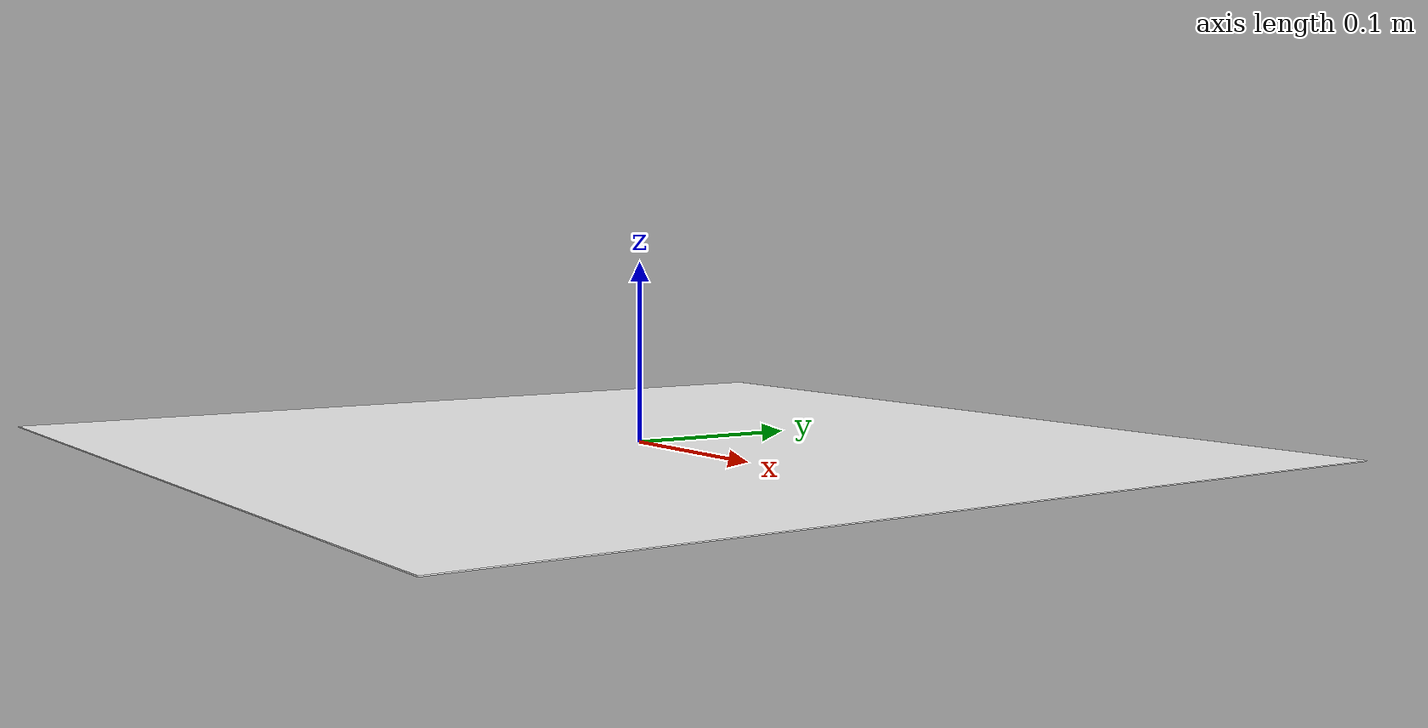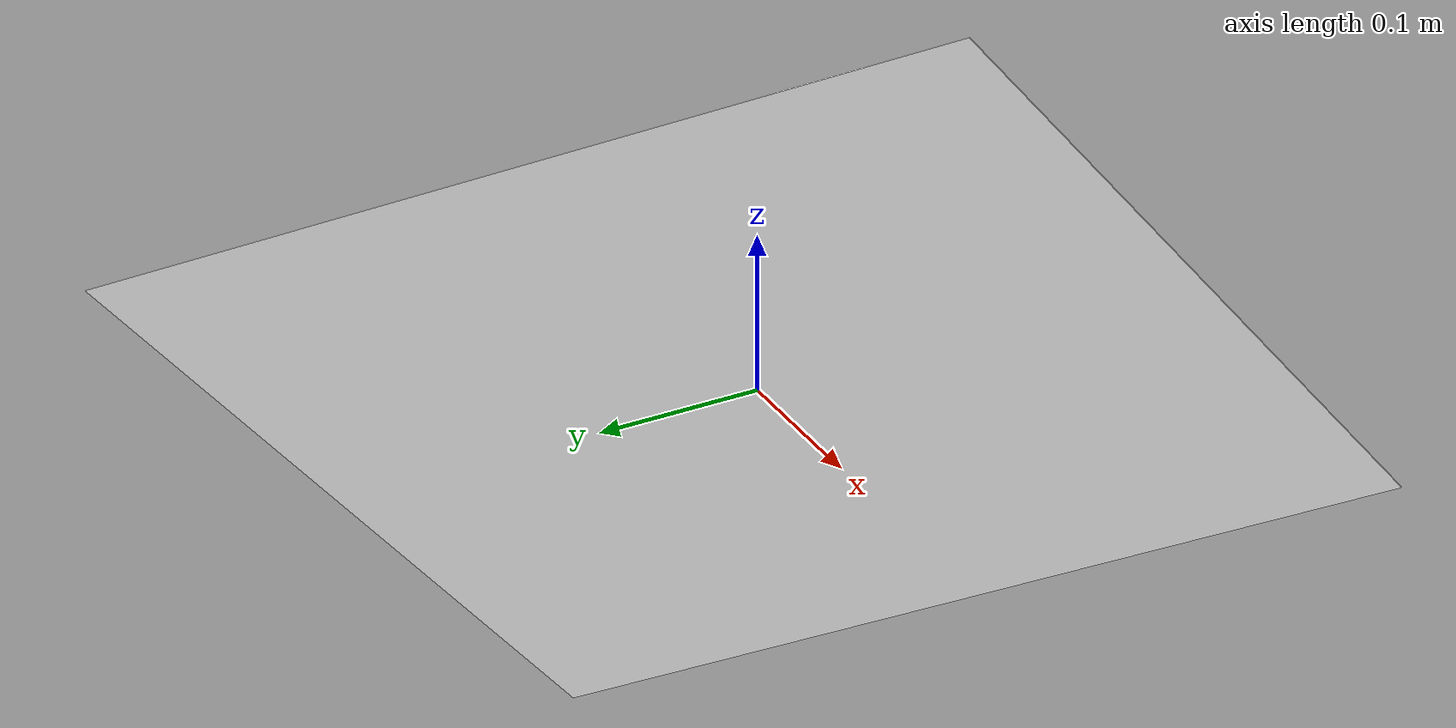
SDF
<?xml version="1.0" ?>
<sdf version="1.10">
  <model name="fractal_5L_6">
    <static>true</static>
    <pose>0 0 0 0 0 0</pose>
    <link name="link">
      <visual name="visual">
        <cast_shadows>false</cast_shadows>
        <geometry>
          <plane>
            <normal>0 0 1</normal>
            <size>0.53846 0.53846</size> <!--Remember to add the margin equation size = (size_0(14))/13 with size_0 = 0.5-->
          </plane>
        </geometry>
        <material>
          <ambient>1 1 1 1</ambient>
          <diffuse>1 1 1 1</diffuse>
          <specular>0 0 0 1</specular>
          <pbr>
            <metal>
              <albedo_map>model://fractal_5L_6/materials/textures/fractal_5L_6.png</albedo_map>
              <metalness>0</metalness>
              <roughness>1</roughness>
            </metal>
          </pbr>
        </material>
      </visual>
    </link>
  </model>
</sdf>
